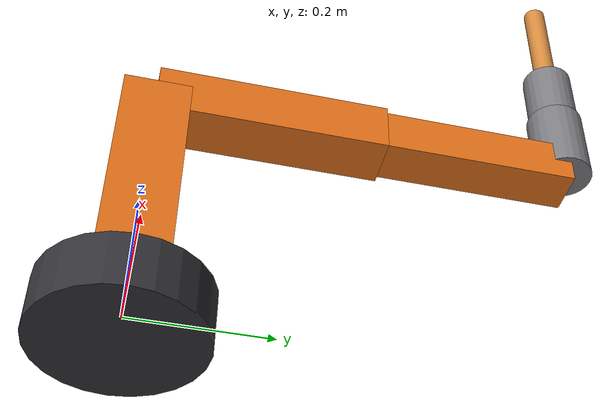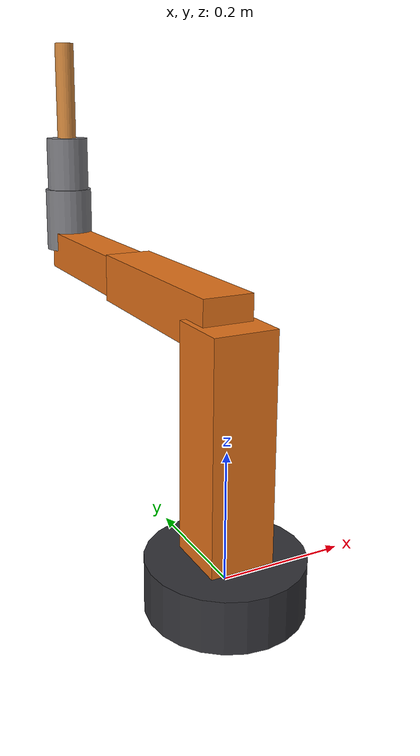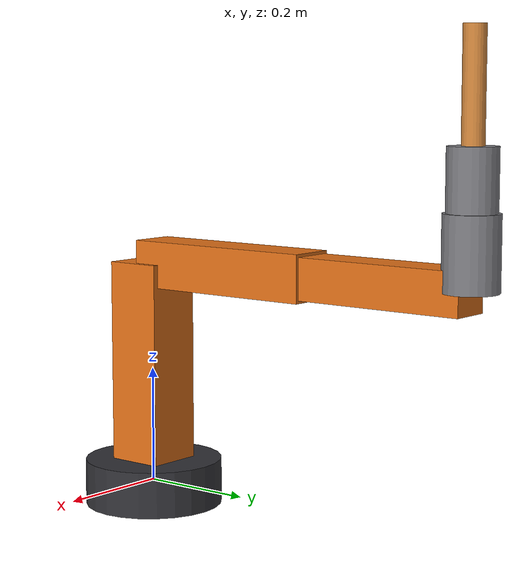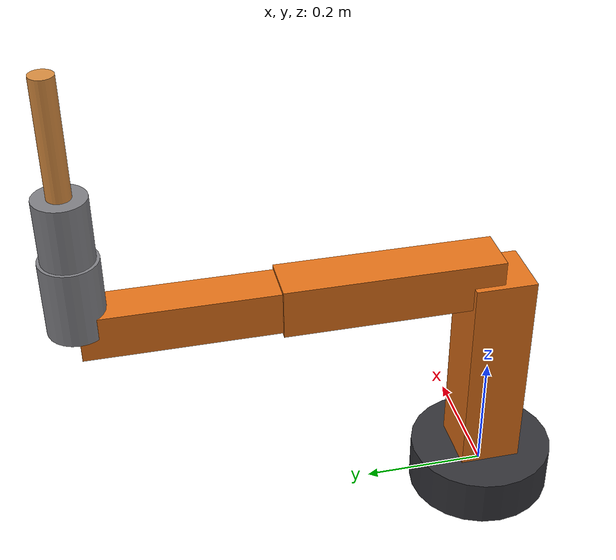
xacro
<?xml version="1.0"?>
<!-- Wrapper so MoveItConfigsBuilder can load URDF from this package (see moveit_config_data.py). -->
<robot xmlns:xacro="http://www.ros.org/wiki/xacro" name="welding_robot">
  <xacro:include filename="$(find welding_robot_description)/urdf/welding_robot_macro.xacro"/>
  <xacro:include filename="$(find welding_robot_description)/urdf/welding_robot_mock_ros2_control.xacro"/>
  <xacro:welding_robot_body/>
  <xacro:welding_robot_mock_ros2_control/>
</robot>

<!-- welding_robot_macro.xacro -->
<robot xmlns:xacro="http://www.ros.org/wiki/xacro">

  <xacro:property name="pi" value="3.14159265359"/>

  <xacro:macro name="welding_robot_body">

    <link name="base_link">
      <visual>
        <geometry><cylinder length="0.08" radius="0.12"/></geometry>
        <material name="dark_grey"><color rgba="0.2 0.2 0.22 1"/></material>
      </visual>
      <collision>
        <geometry><cylinder length="0.08" radius="0.12"/></geometry>
      </collision>
      <inertial>
        <mass value="5.0"/>
        <inertia ixx="0.02" ixy="0" ixz="0" iyy="0.02" iyz="0" izz="0.02"/>
      </inertial>
    </link>

    <link name="link_1">
      <visual>
        <geometry><box size="0.1 0.1 0.35"/></geometry>
        <origin xyz="0 0 0.175"/>
        <material name="orange"><color rgba="0.9 0.45 0.1 1"/></material>
      </visual>
      <collision>
        <geometry><box size="0.1 0.1 0.35"/></geometry>
        <origin xyz="0 0 0.175"/>
      </collision>
      <inertial>
        <origin xyz="0 0 0.175"/>
        <mass value="8.0"/>
        <inertia ixx="0.05" ixy="0" ixz="0" iyy="0.05" iyz="0" izz="0.02"/>
      </inertial>
    </link>

    <joint name="joint_1" type="revolute">
      <parent link="base_link"/>
      <child link="link_1"/>
      <origin xyz="0 0 0.04" rpy="0 0 0"/>
      <axis xyz="0 0 1"/>
      <limit lower="-3.14" upper="3.14" effort="100" velocity="2.0"/>
    </joint>

    <link name="link_2">
      <visual>
        <geometry><box size="0.08 0.35 0.08"/></geometry>
        <origin xyz="0 0.175 0"/>
        <material name="orange"/>
      </visual>
      <collision>
        <geometry><box size="0.08 0.35 0.08"/></geometry>
        <origin xyz="0 0.175 0"/>
      </collision>
      <inertial>
        <origin xyz="0 0.175 0"/>
        <mass value="6.0"/>
        <inertia ixx="0.04" ixy="0" ixz="0" iyy="0.02" iyz="0" izz="0.04"/>
      </inertial>
    </link>

    <joint name="joint_2" type="revolute">
      <parent link="link_1"/>
      <child link="link_2"/>
      <origin xyz="0 0 0.35" rpy="0 0 0"/>
      <axis xyz="0 1 0"/>
      <limit lower="-2.0" upper="2.0" effort="100" velocity="2.0"/>
    </joint>

    <link name="link_3">
      <visual>
        <geometry><box size="0.07 0.3 0.07"/></geometry>
        <origin xyz="0 0.15 0"/>
        <material name="orange"/>
      </visual>
      <collision>
        <geometry><box size="0.07 0.3 0.07"/></geometry>
        <origin xyz="0 0.15 0"/>
      </collision>
      <inertial>
        <origin xyz="0 0.15 0"/>
        <mass value="4.0"/>
        <inertia ixx="0.03" ixy="0" ixz="0" iyy="0.015" iyz="0" izz="0.03"/>
      </inertial>
    </link>

    <joint name="joint_3" type="revolute">
      <parent link="link_2"/>
      <child link="link_3"/>
      <origin xyz="0 0.35 0" rpy="0 0 0"/>
      <axis xyz="0 1 0"/>
      <limit lower="-2.5" upper="2.5" effort="80" velocity="2.0"/>
    </joint>

    <link name="link_4">
      <visual>
        <geometry><cylinder length="0.12" radius="0.045"/></geometry>
        <origin xyz="0 0 0.06"/>
        <material name="grey"><color rgba="0.5 0.5 0.52 1"/></material>
      </visual>
      <collision>
        <geometry><cylinder length="0.12" radius="0.045"/></geometry>
        <origin xyz="0 0 0.06"/>
      </collision>
      <inertial>
        <origin xyz="0 0 0.06"/>
        <mass value="2.0"/>
        <inertia ixx="0.01" ixy="0" ixz="0" iyy="0.01" iyz="0" izz="0.005"/>
      </inertial>
    </link>

    <joint name="joint_4" type="revolute">
      <parent link="link_3"/>
      <child link="link_4"/>
      <origin xyz="0 0.3 0" rpy="0 0 0"/>
      <axis xyz="0 0 1"/>
      <limit lower="-3.14" upper="3.14" effort="40" velocity="3.0"/>
    </joint>

    <link name="link_5">
      <visual>
        <geometry><cylinder length="0.1" radius="0.04"/></geometry>
        <origin xyz="0 0 0.05"/>
        <material name="grey"/>
      </visual>
      <collision>
        <geometry><cylinder length="0.1" radius="0.04"/></geometry>
        <origin xyz="0 0 0.05"/>
      </collision>
      <inertial>
        <origin xyz="0 0 0.05"/>
        <mass value="1.5"/>
        <inertia ixx="0.008" ixy="0" ixz="0" iyy="0.008" iyz="0" izz="0.003"/>
      </inertial>
    </link>

    <joint name="joint_5" type="revolute">
      <parent link="link_4"/>
      <child link="link_5"/>
      <origin xyz="0 0 0.12" rpy="0 0 0"/>
      <axis xyz="0 1 0"/>
      <limit lower="-2.0" upper="2.0" effort="30" velocity="3.0"/>
    </joint>

    <link name="tool0"/>
    <joint name="joint_6" type="revolute">
      <parent link="link_5"/>
      <child link="tool0"/>
      <origin xyz="0 0 0.1" rpy="0 0 0"/>
      <axis xyz="0 0 1"/>
      <limit lower="-6.28" upper="6.28" effort="20" velocity="4.0"/>
    </joint>

    <link name="welding_torch">
      <visual>
        <geometry><cylinder length="0.18" radius="0.018"/></geometry>
        <origin xyz="0 0 0.09"/>
        <material name="copper"><color rgba="0.85 0.55 0.25 1"/></material>
      </visual>
      <collision>
        <geometry><cylinder length="0.18" radius="0.018"/></geometry>
        <origin xyz="0 0 0.09"/>
      </collision>
      <inertial>
        <origin xyz="0 0 0.09"/>
        <mass value="0.8"/>
        <inertia ixx="0.002" ixy="0" ixz="0" iyy="0.002" iyz="0" izz="0.0005"/>
      </inertial>
    </link>

    <joint name="torch_fixed" type="fixed">
      <parent link="tool0"/>
      <child link="welding_torch"/>
      <origin xyz="0 0 0" rpy="0 0 0"/>
    </joint>

    <link name="tcp"/>
    <joint name="tcp_joint" type="fixed">
      <parent link="welding_torch"/>
      <child link="tcp"/>
      <origin xyz="0 0 0.18" rpy="0 0 0"/>
    </joint>

  </xacro:macro>

</robot>
